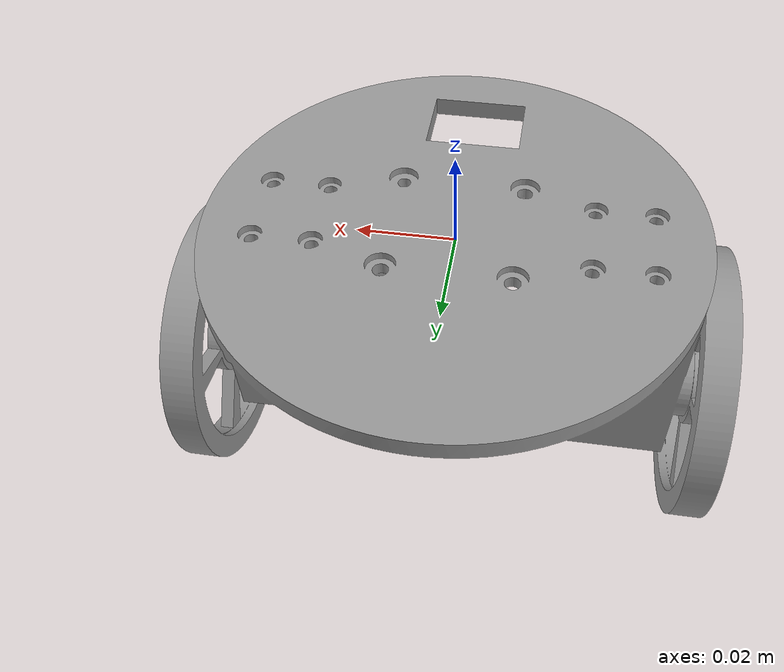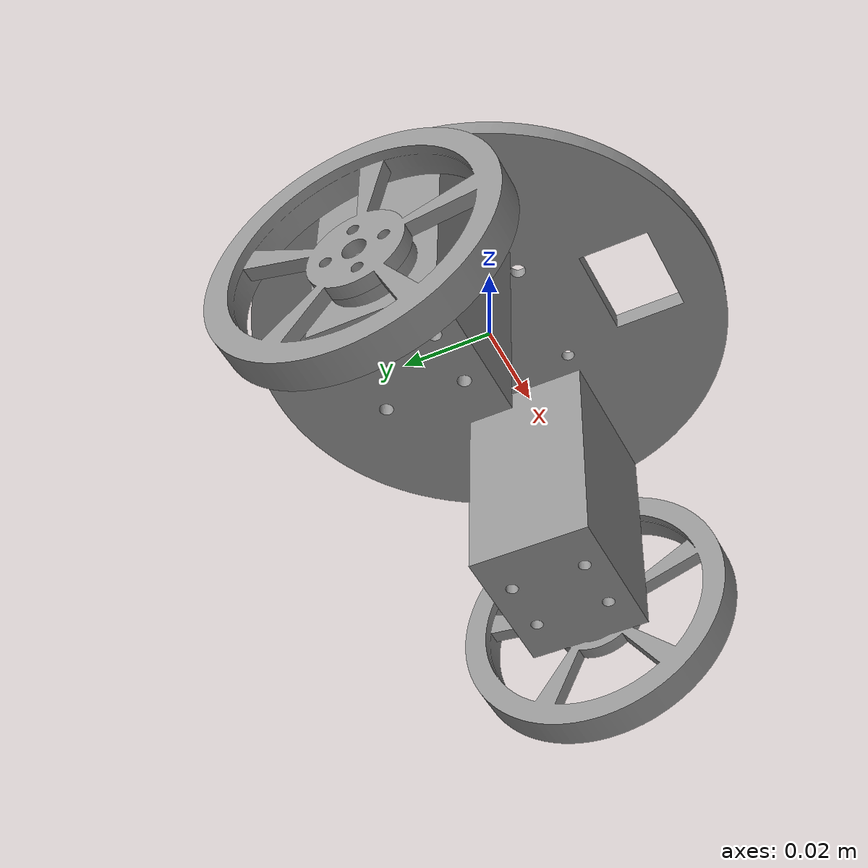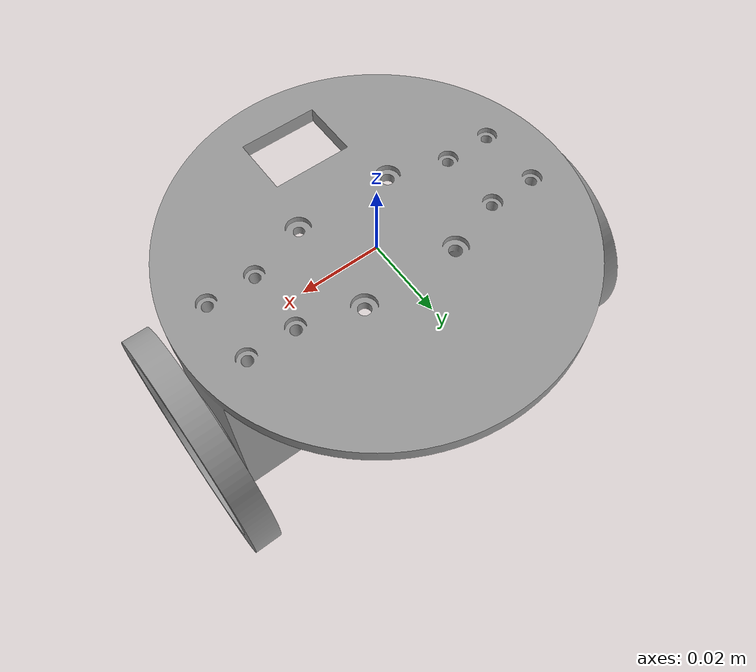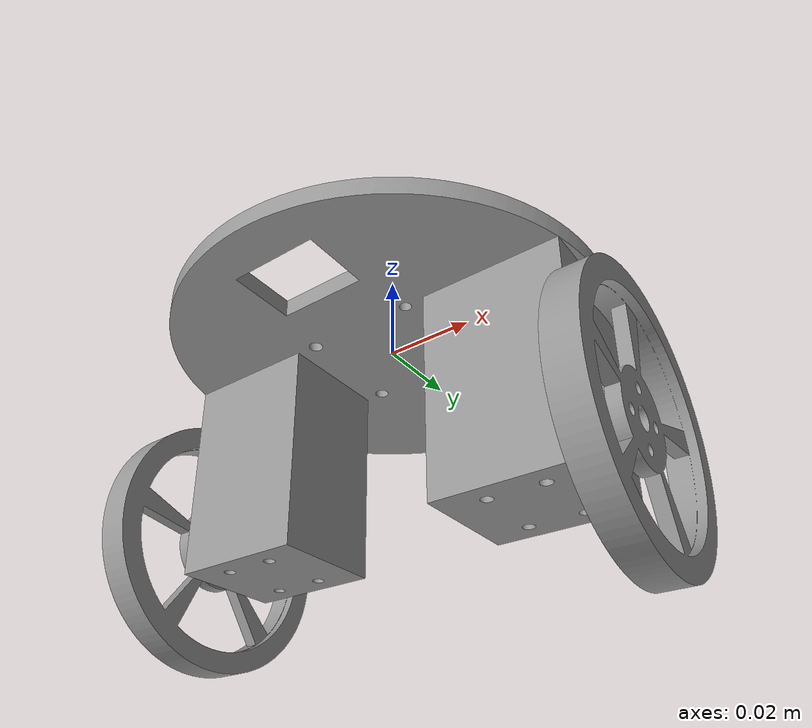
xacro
<?xml version="1.0"?>
<robot name="inverted_robot" xmlns:xacro="http://ros.org/wiki/xacro">
  <xacro:include filename="$(find inverted_robot_description)/urdf/inverted_robot.xacro" />
  <xacro:include filename="$(find inverted_robot_description)/urdf/inverted_robot.ros2_control.xacro" />

  <link name="world"/>

  <xacro:inverted_robot parent="world">
    <origin xyz="0 0 0" rpy="0 0 0" />
  </xacro:inverted_robot>

  <xacro:inverted_robot_ros2_control name="inverted_robot_ros2_control" />
</robot>

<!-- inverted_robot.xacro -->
<robot xmlns:xacro="http://ros.org/wiki/xacro">

<!-- Import Rviz colors -->
<xacro:include filename="$(find inverted_robot_description)/urdf/inverted_robot.material.xacro" />

<xacro:macro name="inverted_robot" params="parent *origin">
  <joint name="origin_to_link1" type="fixed">
    <xacro:insert_block name="origin" />
    <parent link="${parent}" />
    <child link="robot_base" />
    <axis xyz="0 0 1" />
  </joint>

  <!-- Link 1 -->
  <link name="robot_base">
    <visual>
      <origin xyz="0 0 0" rpy="0 0 0"/>
      <geometry>
        <mesh filename="package://inverted_robot_description/meshes/toritsu_plate_with_430.stl" scale="0.001 0.001 0.001"/>
      </geometry>
      <material name="grey"/>
    </visual>

    <collision>
      <origin xyz="0 0 0" rpy="0 0 0"/>
      <geometry>
        <mesh filename="package://inverted_robot_description/meshes/toritsu_plate_with_430.stl" scale="0.001 0.001 0.001"/>
      </geometry>
    </collision>

    <inertial>
      <origin xyz="3.0876154e-04 0.0000000e+00 -1.2176461e-04" />
      <mass value="7.9119962e-02" />
      <inertia ixx="1.2505234e-05" ixy="0.0" ixz="-1.7855208e-07"
               iyy="2.1898364e-05" iyz="0.0"
               izz="1.9267361e-05" />
    </inertial>
  </link>

  <!--  Link 2 -->
  <link name="wheel0">
    <visual>
      <origin xyz="0 0 0" rpy="0 1.57079632679 0"/>
      <geometry>
        <mesh filename="package://inverted_robot_description/meshes/wheel_60mm.stl" scale="0.001 0.001 0.001"/>
      </geometry>
      <material name="grey"/>
    </visual>

    <collision>
      <origin xyz="0 0 0" rpy="0 1.57079632679 0"/>
      <geometry>
        <mesh filename="package://inverted_robot_description/meshes/wheel_60mm.stl" scale="0.001 0.001 0.001"/>
      </geometry>
    </collision>

     <inertial>
      <origin xyz="-3.0184870e-04 5.4043684e-04 0.047433464e-02" />
      <mass value="9.8406837e-02" />
      <inertia ixx="3.4543422e-05" ixy="-1.6031095e-08" ixz="-3.8375155e-07"
               iyy="3.2689329e-05" iyz="2.8511935e-08"
               izz="1.8850320e-05" />
    </inertial>
  </link>

  <link name="wheel1">
    <visual>
        <origin xyz="0 0 0" rpy="0 1.57079632679 0"/>
        <geometry>
          <mesh filename="package://inverted_robot_description/meshes/wheel_60mm.stl" scale="0.001 0.001 0.001"/>
        </geometry>
        <material name="grey"/>
      </visual>

      <collision>
        <origin xyz="0 0 0" rpy="0 1.57079632679 0"/>
        <geometry>
          <mesh filename="package://inverted_robot_description/meshes/wheel_60mm.stl" scale="0.001 0.001 0.001"/>
        </geometry>
      </collision>

       <inertial>
        <origin xyz="-3.0184870e-04 5.4043684e-04 0.047433464e-02" />
        <mass value="9.8406837e-02" />
        <inertia ixx="3.4543422e-05" ixy="-1.6031095e-08" ixz="-3.8375155e-07"
                 iyy="3.2689329e-05" iyz="2.8511935e-08"
                 izz="1.8850320e-05" />
      </inertial>
  </link>

  <!-- Joint 1 -->
  <joint name="joint1" type="revolute">
    <parent link="robot_base"/>
    <child link="wheel0"/>
    <origin xyz="0.057 0 -0.036" rpy="0 0 3.14159265359"/>
    <axis xyz="-1 0 0"/>
    <limit velocity="4.8" effort="1" lower="1.40" upper="2.0" />
  </joint>
  <!--  Joint 2 -->
  <joint name="joint2" type="revolute">
    <parent link="robot_base"/>
    <child link="wheel1"/>
    <origin xyz="-0.057 0 -0.036" rpy="0 0 0"/>
    <axis xyz="-1 0 0"/>
    <limit velocity="4.8" effort="1" lower="1.40" upper="2.0" />
  </joint>

</xacro:macro>
</robot>
